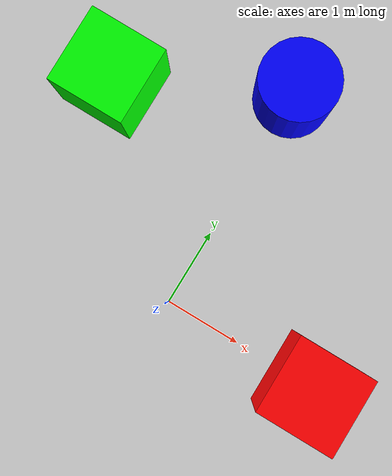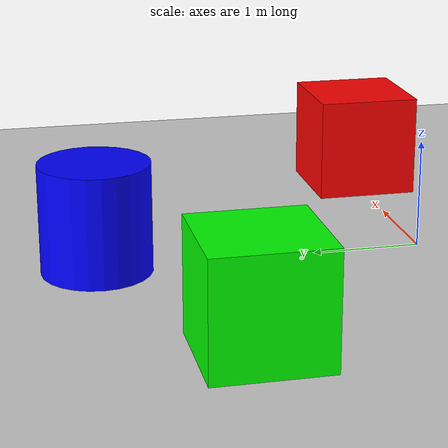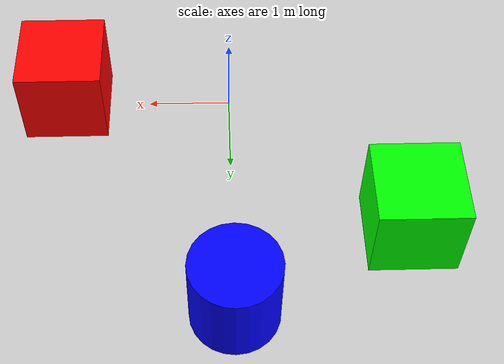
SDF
<?xml version="1.0" ?>
<sdf version="1.5">
  <world name="default">

    <!-- A global light source -->
    <include>
      <uri>model://sun</uri>
    </include>

    <!-- A ground plane -->
    <include>
      <uri>model://ground_plane</uri>
    </include>

    <!-- Some obstacles for testing -->
    <model name="box1">
      <pose>2 0 0.5 0 0 0</pose>
      <static>true</static>
      <link name="link">
        <collision name="collision">
          <geometry>
            <box>
              <size>1 1 1</size>
            </box>
          </geometry>
        </collision>
        <visual name="visual">
          <geometry>
            <box>
              <size>1 1 1</size>
            </box>
          </geometry>
          <material>
            <ambient>1 0 0 1</ambient>
            <diffuse>1 0 0 1</diffuse>
            <specular>1 0 0 1</specular>
          </material>
        </visual>
      </link>
    </model>

    <model name="box2">
      <pose>-2 2 0.5 0 0 0</pose>
      <static>true</static>
      <link name="link">
        <collision name="collision">
          <geometry>
            <box>
              <size>1 1 1</size>
            </box>
          </geometry>
        </collision>
        <visual name="visual">
          <geometry>
            <box>
              <size>1 1 1</size>
            </box>
          </geometry>
          <material>
            <ambient>0 1 0 1</ambient>
            <diffuse>0 1 0 1</diffuse>
            <specular>0 1 0 1</specular>
          </material>
        </visual>
      </link>
    </model>

    <model name="cylinder1">
      <pose>0 3 0.5 0 0 0</pose>
      <static>true</static>
      <link name="link">
        <collision name="collision">
          <geometry>
            <cylinder>
              <radius>0.5</radius>
              <length>1</length>
            </cylinder>
          </geometry>
        </collision>
        <visual name="visual">
          <geometry>
            <cylinder>
              <radius>0.5</radius>
              <length>1</length>
            </cylinder>
          </geometry>
          <material>
            <ambient>0 0 1 1</ambient>
            <diffuse>0 0 1 1</diffuse>
            <specular>0 0 1 1</specular>
          </material>
        </visual>
      </link>
    </model>

  </world>
</sdf>
